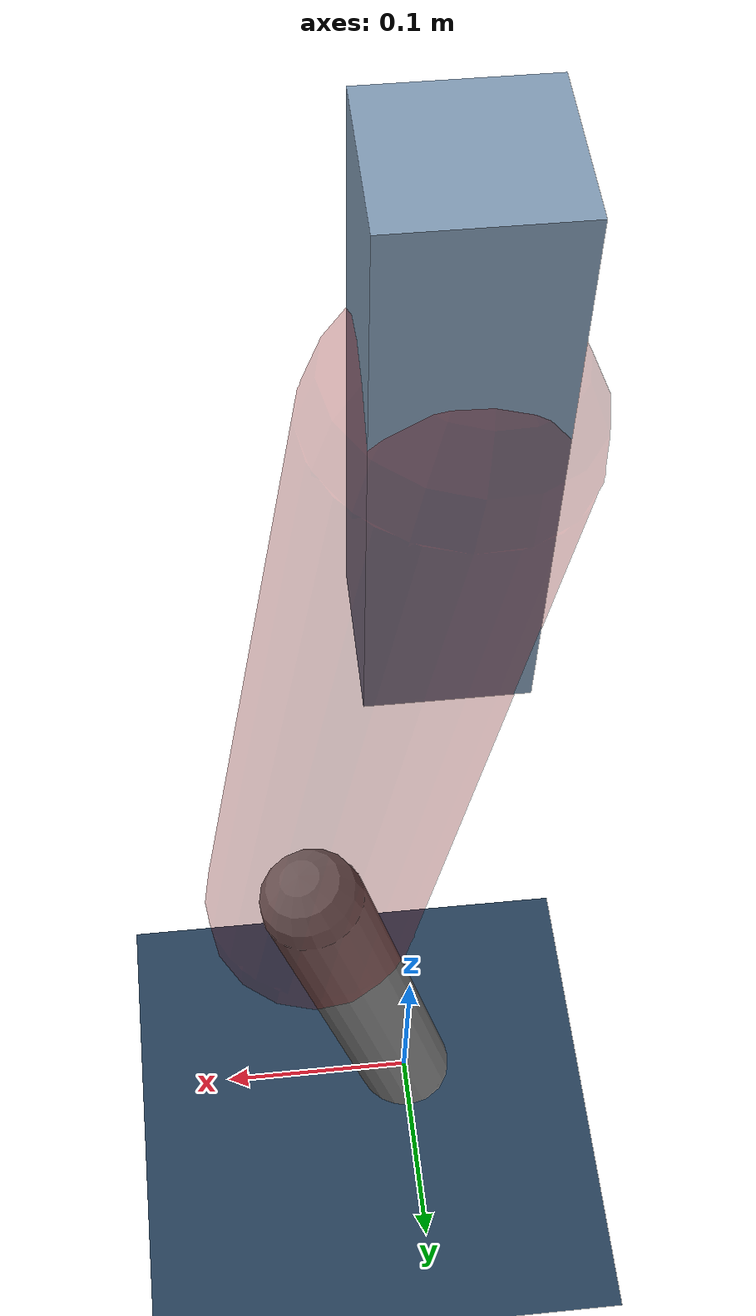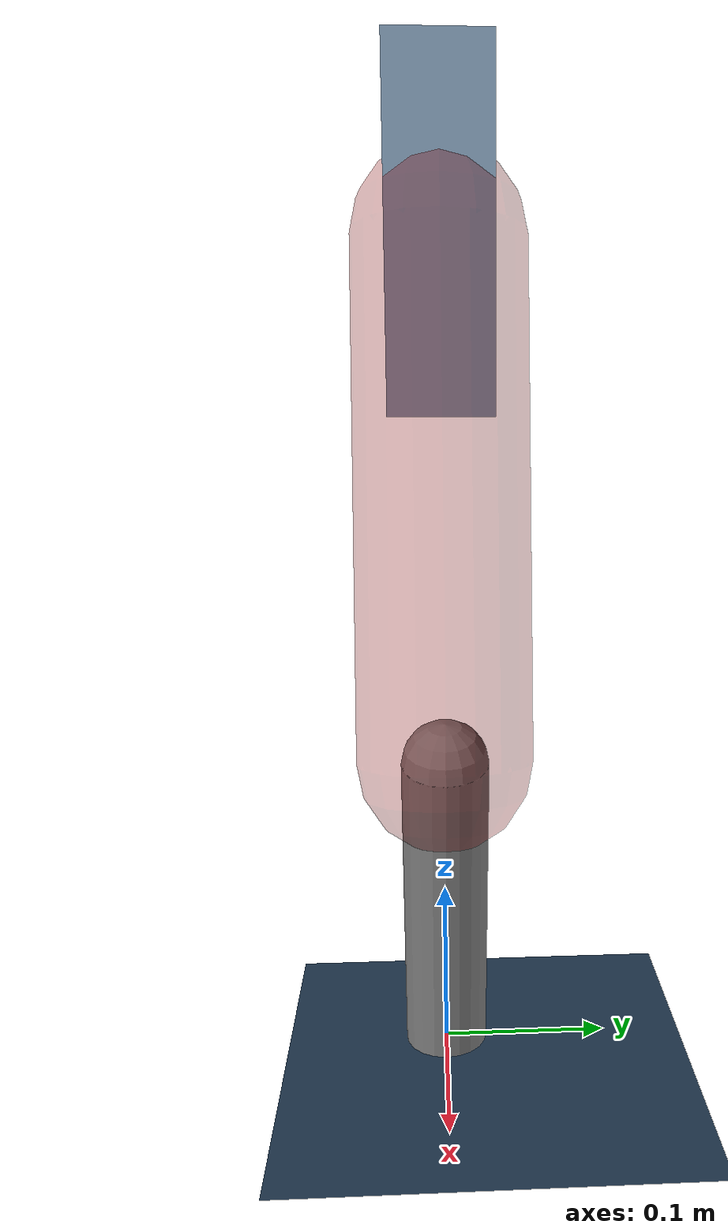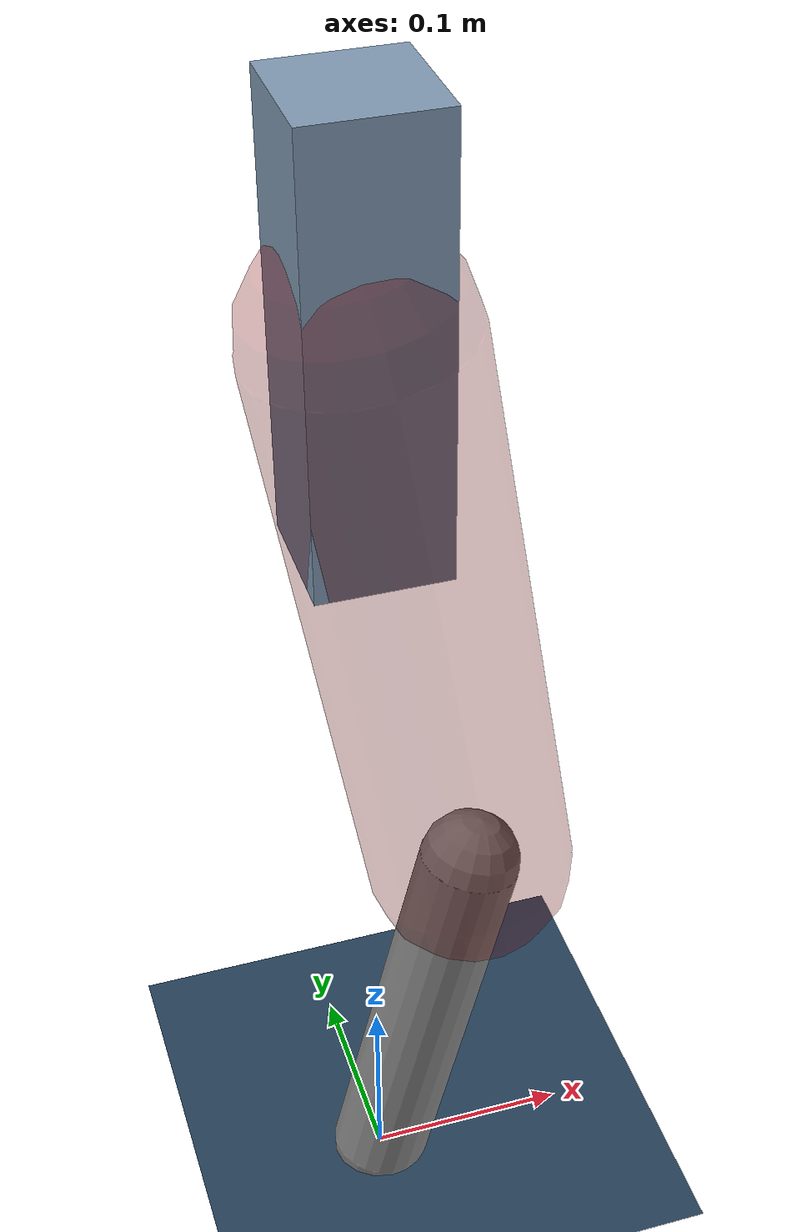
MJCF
<mujoco model="Hopper2D">
	<compiler inertiafromgeom="true" angle="radian" />
	<option timestep="0.001" integrator="implicit" cone="elliptic" solver="Newton" tolerance="1e-10" />

	<default>
		<geom contype="1" conaffinity="1" condim="3" friction="2 0.005 0.0001" solref="0.005 1" />
		<joint limited="true" damping="0.1" />
	</default>

	<asset>
		<texture name="skybox" type="skybox" builtin="gradient" rgb1=".4 .6 .8" rgb2="0 0 0" width="800" height="800" />
		<texture name="grid" type="2d" builtin="checker" rgb1=".1 .2 .3" rgb2=".2 .3 .4" width="300" height="300" mark="edge" markrgb=".2 .3 .4" />
		<material name="ground" texture="grid" texrepeat="1 1" texuniform="true" reflectance="0.1" />
		<material name="leg" rgba="0.5 0.6 0.7 1" />
	</asset>

	<worldbody>

		<geom name="floor" type="plane" size="5 5 0.25" material="ground" />

		<light directional="false" diffuse="0.8 0.8 0.8" specular="0.3 0.3 0.3" pos="0 0 2" dir="0 0 -1" />
		<light mode="targetbodycom" target="base" directional="false" diffuse="0.8 0.8 0.8" specular="0.3 0.3 0.3" pos="0 0 2" dir="0 0 -1" />

		<camera name="fixed" pos="0 -2 1" xyaxes="1 0 0 0 0 1" />
		<camera name="tracking" mode="trackcom" pos="0 -3 1" />

		<body name="root" pos="0 0 0.4908738887186206">
			<joint name="slide_x" type="slide" axis="1 0 0" range="-100 100" />
			<joint name="slide_z" type="slide" axis="0 0 1" range="0 10" />

			<body name="base" pos="0 0 0">
				<geom name="torso" type="box" size="0.03 0.03 0.1" mass="2.959" material="leg" />

				<body name="link1" pos="0 0 0" euler="0 1.4053199936877714 0">
					<joint type="hinge" axis="0 -1 0" pos="0 0 0" name="hinge1" limited="true" range="-3.14 3.14" stiffness="0" damping="0.1" />
					<geom name="thigh" type="capsule" fromto="0 0 0 0.2968356439292441 0 0" size="0.05" rgba="0.5 0 0 0.3" mass="0.9801562386089592" />

					<body name="link2" pos="0.2968356439292441 0 0" euler="0 0.407469788681266 0">
						<joint type="hinge" axis="0 -1 0" pos="0 0 0" name="hinge2" limited="true" range="-3.14 3.14" stiffness="0" damping="0.1" />
						<geom name="shank" type="capsule" fromto="0 0 0 0.20403824478937643 0 0" size="0.025" mass="0.40433059583150116" />

					</body>
				</body>
			</body>
		</body>
	</worldbody>

	<actuator>
		<motor name="torque1" joint="hinge1" ctrlrange="-121.40019212207565 121.40019212207565" ctrllimited="true" gear="1" />
		<motor name="torque2" joint="hinge2" ctrlrange="-116.04463164695082 116.04463164695082" ctrllimited="true" gear="1" />
	</actuator>
</mujoco>
